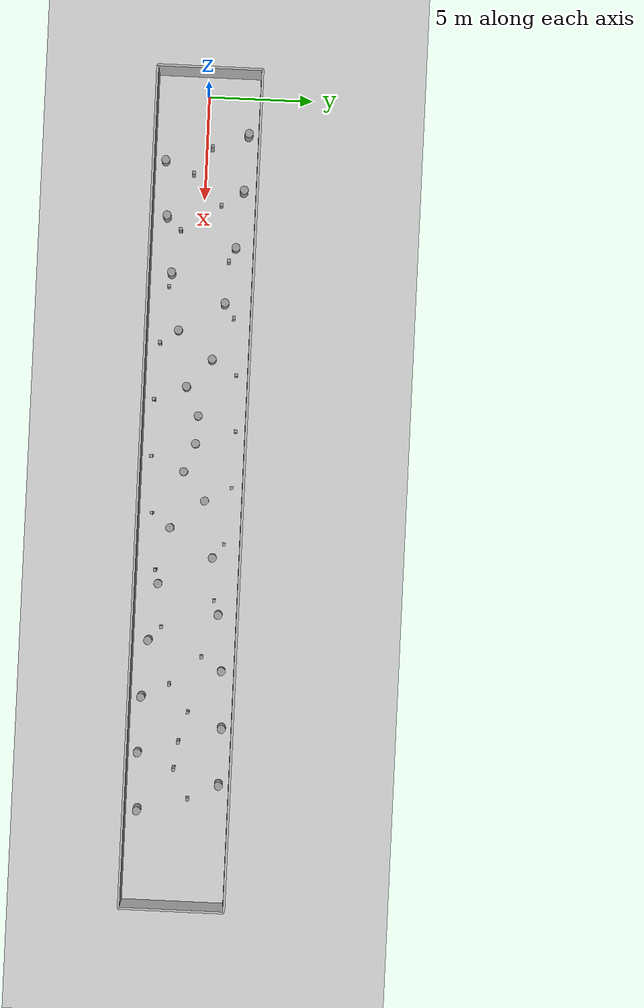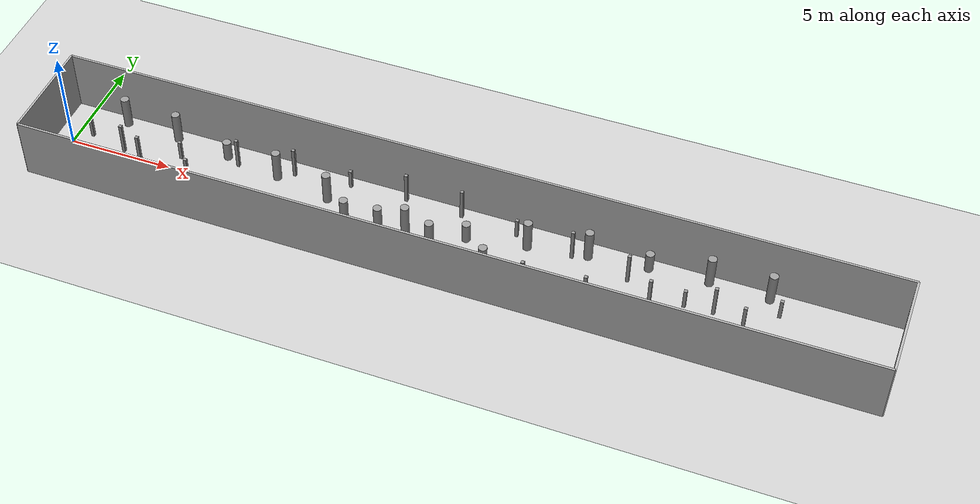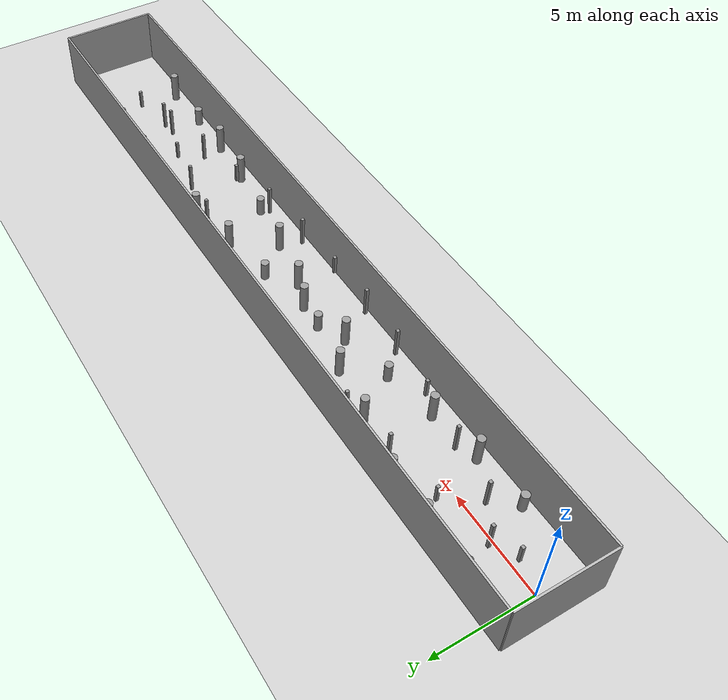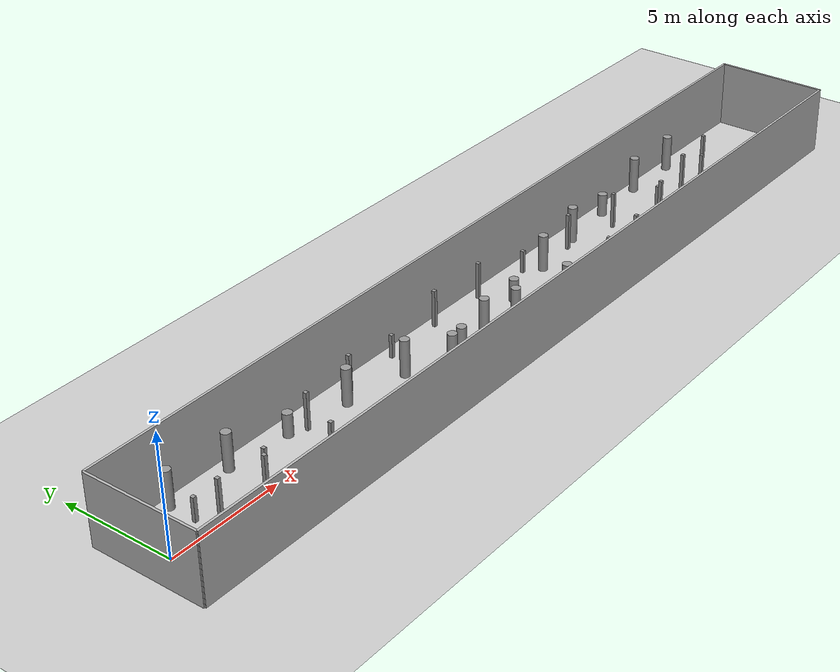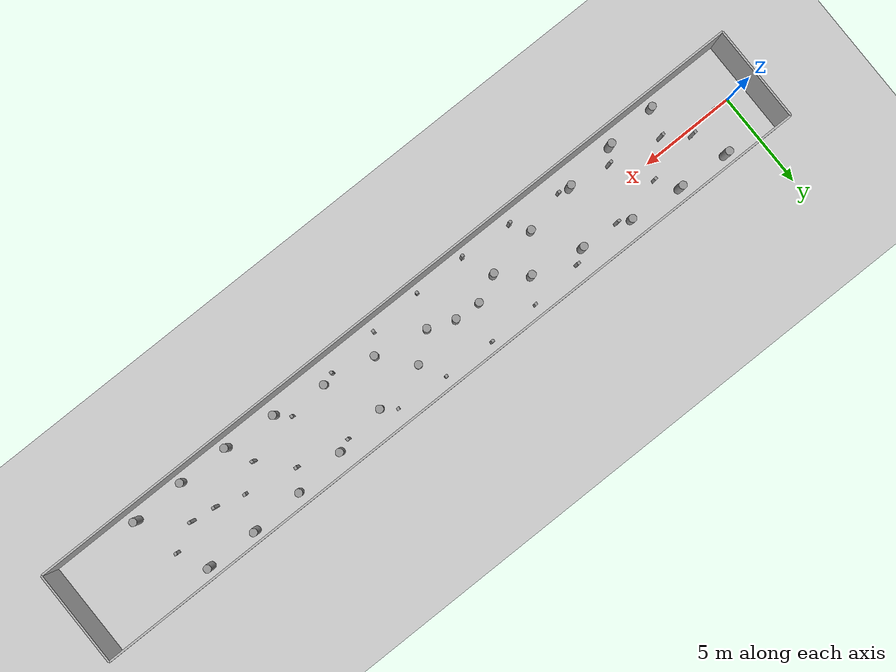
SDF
<?xml version="1.0" ?>
<sdf version="1.6">
<world name="default">
    <physics type="ode">
      <max_step_size>0.004</max_step_size>
      <real_time_factor>1.0</real_time_factor>
      <real_time_update_rate>250</real_time_update_rate>
    </physics>
    <plugin name="ros_interface" filename="libgazebo_ros_api_plugin.so"/>
    <include><uri>model://sun</uri></include>
    <include><uri>model://ground_plane</uri></include>
    <model name="room_frame"><static>true</static>
 <link name="north"><pose>19 2.5 1.5 0 0 0</pose><collision name="c"><geometry><box><size>40 0.1 3.0</size></box></geometry></collision><visual name="v"><geometry><box><size>40 0.1 3.0</size></box></geometry></visual></link>
    <link name="south"><pose>19 -2.5 1.5 0 0 0</pose><collision name="c"><geometry><box><size>40 0.1 3.0</size></box></geometry></collision><visual name="v"><geometry><box><size>40 0.1 3.0</size></box></geometry></visual></link>
    <link name="east"><pose>39 0 1.5 0 0 0</pose><collision name="c"><geometry><box><size>0.1 5 3.0</size></box></geometry></collision><visual name="v"><geometry><box><size>0.1 5 3.0</size></box></geometry></visual></link>
    <link name="west"><pose>-1 0 1.5 0 0 0</pose><collision name="c"><geometry><box><size>0.1 5 3.0</size></box></geometry></collision><visual name="v"><geometry><box><size>0.1 5 3.0</size></box></geometry></visual></link></model>
    <model name="static_0"><pose>1.20 0.00 1.30 0 0 0</pose><static>true</static>
    <link name="l"><collision name="c"><geometry><box><size>0.15 0.15 1.0</size></box></geometry></collision>
    <visual name="v"><geometry><box><size>0.15 0.15 1.0</size></box></geometry><material><script><uri>file://media/materials/scripts/gazebo.material</uri><name>Gazebo/Grey</name></script></material></visual></link></model>
    <model name="static_1"><pose>1.88 1.99 0.80 0 0 0</pose><static>true</static>
    <link name="l"><collision name="c"><geometry><cylinder><radius>0.2</radius><length>1.6</length></cylinder></geometry></collision>
    <visual name="v"><geometry><cylinder><radius>0.2</radius><length>1.6</length></cylinder></geometry><material><script><uri>file://media/materials/scripts/gazebo.material</uri><name>Gazebo/Grey</name></script></material></visual></link></model>
    <model name="static_2"><pose>2.56 0.28 0.80 0 0 0</pose><static>true</static>
    <link name="l"><collision name="c"><geometry><box><size>0.15 0.15 1.6</size></box></geometry></collision>
    <visual name="v"><geometry><box><size>0.15 0.15 1.6</size></box></geometry><material><script><uri>file://media/materials/scripts/gazebo.material</uri><name>Gazebo/Grey</name></script></material></visual></link></model>
    <model name="static_3"><pose>3.24 -1.96 0.50 0 0 0</pose><static>true</static>
    <link name="l"><collision name="c"><geometry><cylinder><radius>0.2</radius><length>1.0</length></cylinder></geometry></collision>
    <visual name="v"><geometry><cylinder><radius>0.2</radius><length>1.0</length></cylinder></geometry><material><script><uri>file://media/materials/scripts/gazebo.material</uri><name>Gazebo/Grey</name></script></material></visual></link></model>
    <model name="static_4"><pose>3.92 -0.56 1.30 0 0 0</pose><static>true</static>
    <link name="l"><collision name="c"><geometry><box><size>0.15 0.15 1.6</size></box></geometry></collision>
    <visual name="v"><geometry><box><size>0.15 0.15 1.6</size></box></geometry><material><script><uri>file://media/materials/scripts/gazebo.material</uri><name>Gazebo/Grey</name></script></material></visual></link></model>
    <model name="static_5"><pose>4.60 1.88 0.80 0 0 0</pose><static>true</static>
    <link name="l"><collision name="c"><geometry><cylinder><radius>0.2</radius><length>1.6</length></cylinder></geometry></collision>
    <visual name="v"><geometry><cylinder><radius>0.2</radius><length>1.6</length></cylinder></geometry><material><script><uri>file://media/materials/scripts/gazebo.material</uri><name>Gazebo/Grey</name></script></material></visual></link></model>
    <model name="static_6"><pose>5.28 0.82 0.50 0 0 0</pose><static>true</static>
    <link name="l"><collision name="c"><geometry><box><size>0.15 0.15 1.0</size></box></geometry></collision>
    <visual name="v"><geometry><box><size>0.15 0.15 1.0</size></box></geometry><material><script><uri>file://media/materials/scripts/gazebo.material</uri><name>Gazebo/Grey</name></script></material></visual></link></model>
    <model name="static_7"><pose>5.96 -1.76 0.80 0 0 0</pose><static>true</static>
    <link name="l"><collision name="c"><geometry><cylinder><radius>0.2</radius><length>1.6</length></cylinder></geometry></collision>
    <visual name="v"><geometry><cylinder><radius>0.2</radius><length>1.6</length></cylinder></geometry><material><script><uri>file://media/materials/scripts/gazebo.material</uri><name>Gazebo/Grey</name></script></material></visual></link></model>
    <model name="static_8"><pose>6.64 -1.07 1.30 0 0 0</pose><static>true</static>
    <link name="l"><collision name="c"><geometry><box><size>0.15 0.15 1.6</size></box></geometry></collision>
    <visual name="v"><geometry><box><size>0.15 0.15 1.6</size></box></geometry><material><script><uri>file://media/materials/scripts/gazebo.material</uri><name>Gazebo/Grey</name></script></material></visual></link></model>
    <model name="static_9"><pose>7.32 1.61 0.50 0 0 0</pose><static>true</static>
    <link name="l"><collision name="c"><geometry><cylinder><radius>0.2</radius><length>1.0</length></cylinder></geometry></collision>
    <visual name="v"><geometry><cylinder><radius>0.2</radius><length>1.0</length></cylinder></geometry><material><script><uri>file://media/materials/scripts/gazebo.material</uri><name>Gazebo/Grey</name></script></material></visual></link></model>
    <model name="static_10"><pose>8.00 1.30 0.80 0 0 0</pose><static>true</static>
    <link name="l"><collision name="c"><geometry><box><size>0.15 0.15 1.6</size></box></geometry></collision>
    <visual name="v"><geometry><box><size>0.15 0.15 1.6</size></box></geometry><material><script><uri>file://media/materials/scripts/gazebo.material</uri><name>Gazebo/Grey</name></script></material></visual></link></model>
    <model name="static_11"><pose>8.68 -1.42 0.80 0 0 0</pose><static>true</static>
    <link name="l"><collision name="c"><geometry><cylinder><radius>0.2</radius><length>1.6</length></cylinder></geometry></collision>
    <visual name="v"><geometry><cylinder><radius>0.2</radius><length>1.6</length></cylinder></geometry><material><script><uri>file://media/materials/scripts/gazebo.material</uri><name>Gazebo/Grey</name></script></material></visual></link></model>
    <model name="static_12"><pose>9.36 -1.50 1.30 0 0 0</pose><static>true</static>
    <link name="l"><collision name="c"><geometry><box><size>0.15 0.15 1.0</size></box></geometry></collision>
    <visual name="v"><geometry><box><size>0.15 0.15 1.0</size></box></geometry><material><script><uri>file://media/materials/scripts/gazebo.material</uri><name>Gazebo/Grey</name></script></material></visual></link></model>
    <model name="static_13"><pose>10.04 1.21 0.80 0 0 0</pose><static>true</static>
    <link name="l"><collision name="c"><geometry><cylinder><radius>0.2</radius><length>1.6</length></cylinder></geometry></collision>
    <visual name="v"><geometry><cylinder><radius>0.2</radius><length>1.6</length></cylinder></geometry><material><script><uri>file://media/materials/scripts/gazebo.material</uri><name>Gazebo/Grey</name></script></material></visual></link></model>
    <model name="static_14"><pose>10.72 1.67 0.80 0 0 0</pose><static>true</static>
    <link name="l"><collision name="c"><geometry><box><size>0.15 0.15 1.6</size></box></geometry></collision>
    <visual name="v"><geometry><box><size>0.15 0.15 1.6</size></box></geometry><material><script><uri>file://media/materials/scripts/gazebo.material</uri><name>Gazebo/Grey</name></script></material></visual></link></model>
    <model name="static_15"><pose>11.40 -0.97 0.50 0 0 0</pose><static>true</static>
    <link name="l"><collision name="c"><geometry><cylinder><radius>0.2</radius><length>1.0</length></cylinder></geometry></collision>
    <visual name="v"><geometry><cylinder><radius>0.2</radius><length>1.0</length></cylinder></geometry><material><script><uri>file://media/materials/scripts/gazebo.material</uri><name>Gazebo/Grey</name></script></material></visual></link></model>
    <model name="static_16"><pose>12.08 -1.81 1.30 0 0 0</pose><static>true</static>
    <link name="l"><collision name="c"><geometry><box><size>0.15 0.15 1.6</size></box></geometry></collision>
    <visual name="v"><geometry><box><size>0.15 0.15 1.6</size></box></geometry><material><script><uri>file://media/materials/scripts/gazebo.material</uri><name>Gazebo/Grey</name></script></material></visual></link></model>
    <model name="static_17"><pose>12.76 0.72 0.80 0 0 0</pose><static>true</static>
    <link name="l"><collision name="c"><geometry><cylinder><radius>0.2</radius><length>1.6</length></cylinder></geometry></collision>
    <visual name="v"><geometry><cylinder><radius>0.2</radius><length>1.6</length></cylinder></geometry><material><script><uri>file://media/materials/scripts/gazebo.material</uri><name>Gazebo/Grey</name></script></material></visual></link></model>
    <model name="static_18"><pose>13.44 1.91 0.50 0 0 0</pose><static>true</static>
    <link name="l"><collision name="c"><geometry><box><size>0.15 0.15 1.0</size></box></geometry></collision>
    <visual name="v"><geometry><box><size>0.15 0.15 1.0</size></box></geometry><material><script><uri>file://media/materials/scripts/gazebo.material</uri><name>Gazebo/Grey</name></script></material></visual></link></model>
    <model name="static_19"><pose>14.12 -0.45 0.80 0 0 0</pose><static>true</static>
    <link name="l"><collision name="c"><geometry><cylinder><radius>0.2</radius><length>1.6</length></cylinder></geometry></collision>
    <visual name="v"><geometry><cylinder><radius>0.2</radius><length>1.6</length></cylinder></geometry><material><script><uri>file://media/materials/scripts/gazebo.material</uri><name>Gazebo/Grey</name></script></material></visual></link></model>
    <model name="static_20"><pose>14.80 -1.98 1.30 0 0 0</pose><static>true</static>
    <link name="l"><collision name="c"><geometry><box><size>0.15 0.15 1.6</size></box></geometry></collision>
    <visual name="v"><geometry><box><size>0.15 0.15 1.6</size></box></geometry><material><script><uri>file://media/materials/scripts/gazebo.material</uri><name>Gazebo/Grey</name></script></material></visual></link></model>
    <model name="static_21"><pose>15.48 0.17 0.50 0 0 0</pose><static>true</static>
    <link name="l"><collision name="c"><geometry><cylinder><radius>0.2</radius><length>1.0</length></cylinder></geometry></collision>
    <visual name="v"><geometry><cylinder><radius>0.2</radius><length>1.0</length></cylinder></geometry><material><script><uri>file://media/materials/scripts/gazebo.material</uri><name>Gazebo/Grey</name></script></material></visual></link></model>
    <model name="static_22"><pose>16.16 2.00 0.80 0 0 0</pose><static>true</static>
    <link name="l"><collision name="c"><geometry><box><size>0.15 0.15 1.6</size></box></geometry></collision>
    <visual name="v"><geometry><box><size>0.15 0.15 1.6</size></box></geometry><material><script><uri>file://media/materials/scripts/gazebo.material</uri><name>Gazebo/Grey</name></script></material></visual></link></model>
    <model name="static_23"><pose>16.84 0.11 0.80 0 0 0</pose><static>true</static>
    <link name="l"><collision name="c"><geometry><cylinder><radius>0.2</radius><length>1.6</length></cylinder></geometry></collision>
    <visual name="v"><geometry><cylinder><radius>0.2</radius><length>1.6</length></cylinder></geometry><material><script><uri>file://media/materials/scripts/gazebo.material</uri><name>Gazebo/Grey</name></script></material></visual></link></model>
    <model name="static_24"><pose>17.52 -1.98 1.30 0 0 0</pose><static>true</static>
    <link name="l"><collision name="c"><geometry><box><size>0.15 0.15 1.0</size></box></geometry></collision>
    <visual name="v"><geometry><box><size>0.15 0.15 1.0</size></box></geometry><material><script><uri>file://media/materials/scripts/gazebo.material</uri><name>Gazebo/Grey</name></script></material></visual></link></model>
    <model name="static_25"><pose>18.20 -0.40 0.80 0 0 0</pose><static>true</static>
    <link name="l"><collision name="c"><geometry><cylinder><radius>0.2</radius><length>1.6</length></cylinder></geometry></collision>
    <visual name="v"><geometry><cylinder><radius>0.2</radius><length>1.6</length></cylinder></geometry><material><script><uri>file://media/materials/scripts/gazebo.material</uri><name>Gazebo/Grey</name></script></material></visual></link></model>
    <model name="static_26"><pose>18.88 1.93 0.80 0 0 0</pose><static>true</static>
    <link name="l"><collision name="c"><geometry><box><size>0.15 0.15 1.6</size></box></geometry></collision>
    <visual name="v"><geometry><box><size>0.15 0.15 1.6</size></box></geometry><material><script><uri>file://media/materials/scripts/gazebo.material</uri><name>Gazebo/Grey</name></script></material></visual></link></model>
    <model name="static_27"><pose>19.56 0.67 0.50 0 0 0</pose><static>true</static>
    <link name="l"><collision name="c"><geometry><cylinder><radius>0.2</radius><length>1.0</length></cylinder></geometry></collision>
    <visual name="v"><geometry><cylinder><radius>0.2</radius><length>1.0</length></cylinder></geometry><material><script><uri>file://media/materials/scripts/gazebo.material</uri><name>Gazebo/Grey</name></script></material></visual></link></model>
    <model name="static_28"><pose>20.24 -1.83 1.30 0 0 0</pose><static>true</static>
    <link name="l"><collision name="c"><geometry><box><size>0.15 0.15 1.6</size></box></geometry></collision>
    <visual name="v"><geometry><box><size>0.15 0.15 1.6</size></box></geometry><material><script><uri>file://media/materials/scripts/gazebo.material</uri><name>Gazebo/Grey</name></script></material></visual></link></model>
    <model name="static_29"><pose>20.92 -0.93 0.80 0 0 0</pose><static>true</static>
    <link name="l"><collision name="c"><geometry><cylinder><radius>0.2</radius><length>1.6</length></cylinder></geometry></collision>
    <visual name="v"><geometry><cylinder><radius>0.2</radius><length>1.6</length></cylinder></geometry><material><script><uri>file://media/materials/scripts/gazebo.material</uri><name>Gazebo/Grey</name></script></material></visual></link></model>
    <model name="static_30"><pose>21.60 1.70 0.50 0 0 0</pose><static>true</static>
    <link name="l"><collision name="c"><geometry><box><size>0.15 0.15 1.0</size></box></geometry></collision>
    <visual name="v"><geometry><box><size>0.15 0.15 1.0</size></box></geometry><material><script><uri>file://media/materials/scripts/gazebo.material</uri><name>Gazebo/Grey</name></script></material></visual></link></model>
    <model name="static_31"><pose>22.28 1.17 0.80 0 0 0</pose><static>true</static>
    <link name="l"><collision name="c"><geometry><cylinder><radius>0.2</radius><length>1.6</length></cylinder></geometry></collision>
    <visual name="v"><geometry><cylinder><radius>0.2</radius><length>1.6</length></cylinder></geometry><material><script><uri>file://media/materials/scripts/gazebo.material</uri><name>Gazebo/Grey</name></script></material></visual></link></model>
    <model name="static_32"><pose>22.96 -1.54 1.30 0 0 0</pose><static>true</static>
    <link name="l"><collision name="c"><geometry><box><size>0.15 0.15 1.6</size></box></geometry></collision>
    <visual name="v"><geometry><box><size>0.15 0.15 1.6</size></box></geometry><material><script><uri>file://media/materials/scripts/gazebo.material</uri><name>Gazebo/Grey</name></script></material></visual></link></model>
    <model name="static_33"><pose>23.64 -1.39 0.50 0 0 0</pose><static>true</static>
    <link name="l"><collision name="c"><geometry><cylinder><radius>0.2</radius><length>1.0</length></cylinder></geometry></collision>
    <visual name="v"><geometry><cylinder><radius>0.2</radius><length>1.0</length></cylinder></geometry><material><script><uri>file://media/materials/scripts/gazebo.material</uri><name>Gazebo/Grey</name></script></material></visual></link></model>
    <model name="static_34"><pose>24.32 1.34 0.80 0 0 0</pose><static>true</static>
    <link name="l"><collision name="c"><geometry><box><size>0.15 0.15 1.6</size></box></geometry></collision>
    <visual name="v"><geometry><box><size>0.15 0.15 1.6</size></box></geometry><material><script><uri>file://media/materials/scripts/gazebo.material</uri><name>Gazebo/Grey</name></script></material></visual></link></model>
    <model name="static_35"><pose>25.00 1.58 0.80 0 0 0</pose><static>true</static>
    <link name="l"><collision name="c"><geometry><cylinder><radius>0.2</radius><length>1.6</length></cylinder></geometry></collision>
    <visual name="v"><geometry><cylinder><radius>0.2</radius><length>1.6</length></cylinder></geometry><material><script><uri>file://media/materials/scripts/gazebo.material</uri><name>Gazebo/Grey</name></script></material></visual></link></model>
    <model name="static_36"><pose>25.68 -1.12 1.30 0 0 0</pose><static>true</static>
    <link name="l"><collision name="c"><geometry><box><size>0.15 0.15 1.0</size></box></geometry></collision>
    <visual name="v"><geometry><box><size>0.15 0.15 1.0</size></box></geometry><material><script><uri>file://media/materials/scripts/gazebo.material</uri><name>Gazebo/Grey</name></script></material></visual></link></model>
    <model name="static_37"><pose>26.36 -1.73 0.80 0 0 0</pose><static>true</static>
    <link name="l"><collision name="c"><geometry><cylinder><radius>0.2</radius><length>1.6</length></cylinder></geometry></collision>
    <visual name="v"><geometry><cylinder><radius>0.2</radius><length>1.6</length></cylinder></geometry><material><script><uri>file://media/materials/scripts/gazebo.material</uri><name>Gazebo/Grey</name></script></material></visual></link></model>
    <model name="static_38"><pose>27.04 0.87 0.80 0 0 0</pose><static>true</static>
    <link name="l"><collision name="c"><geometry><box><size>0.15 0.15 1.6</size></box></geometry></collision>
    <visual name="v"><geometry><box><size>0.15 0.15 1.6</size></box></geometry><material><script><uri>file://media/materials/scripts/gazebo.material</uri><name>Gazebo/Grey</name></script></material></visual></link></model>
    <model name="static_39"><pose>27.72 1.86 0.50 0 0 0</pose><static>true</static>
    <link name="l"><collision name="c"><geometry><cylinder><radius>0.2</radius><length>1.0</length></cylinder></geometry></collision>
    <visual name="v"><geometry><cylinder><radius>0.2</radius><length>1.0</length></cylinder></geometry><material><script><uri>file://media/materials/scripts/gazebo.material</uri><name>Gazebo/Grey</name></script></material></visual></link></model>
    <model name="static_40"><pose>28.40 -0.61 1.30 0 0 0</pose><static>true</static>
    <link name="l"><collision name="c"><geometry><box><size>0.15 0.15 1.6</size></box></geometry></collision>
    <visual name="v"><geometry><box><size>0.15 0.15 1.6</size></box></geometry><material><script><uri>file://media/materials/scripts/gazebo.material</uri><name>Gazebo/Grey</name></script></material></visual></link></model>
    <model name="static_41"><pose>29.08 -1.94 0.80 0 0 0</pose><static>true</static>
    <link name="l"><collision name="c"><geometry><cylinder><radius>0.2</radius><length>1.6</length></cylinder></geometry></collision>
    <visual name="v"><geometry><cylinder><radius>0.2</radius><length>1.6</length></cylinder></geometry><material><script><uri>file://media/materials/scripts/gazebo.material</uri><name>Gazebo/Grey</name></script></material></visual></link></model>
    <model name="static_42"><pose>29.76 0.33 0.50 0 0 0</pose><static>true</static>
    <link name="l"><collision name="c"><geometry><box><size>0.15 0.15 1.0</size></box></geometry></collision>
    <visual name="v"><geometry><box><size>0.15 0.15 1.0</size></box></geometry><material><script><uri>file://media/materials/scripts/gazebo.material</uri><name>Gazebo/Grey</name></script></material></visual></link></model>
    <model name="static_43"><pose>30.44 1.99 0.80 0 0 0</pose><static>true</static>
    <link name="l"><collision name="c"><geometry><cylinder><radius>0.2</radius><length>1.6</length></cylinder></geometry></collision>
    <visual name="v"><geometry><cylinder><radius>0.2</radius><length>1.6</length></cylinder></geometry><material><script><uri>file://media/materials/scripts/gazebo.material</uri><name>Gazebo/Grey</name></script></material></visual></link></model>
    <model name="static_44"><pose>31.12 -0.05 1.30 0 0 0</pose><static>true</static>
    <link name="l"><collision name="c"><geometry><box><size>0.15 0.15 1.6</size></box></geometry></collision>
    <visual name="v"><geometry><box><size>0.15 0.15 1.6</size></box></geometry><material><script><uri>file://media/materials/scripts/gazebo.material</uri><name>Gazebo/Grey</name></script></material></visual></link></model>
    <model name="static_45"><pose>31.80 -2.00 0.50 0 0 0</pose><static>true</static>
    <link name="l"><collision name="c"><geometry><cylinder><radius>0.2</radius><length>1.0</length></cylinder></geometry></collision>
    <visual name="v"><geometry><cylinder><radius>0.2</radius><length>1.0</length></cylinder></geometry><material><script><uri>file://media/materials/scripts/gazebo.material</uri><name>Gazebo/Grey</name></script></material></visual></link></model>
    <model name="static_46"><pose>32.48 -0.23 0.80 0 0 0</pose><static>true</static>
    <link name="l"><collision name="c"><geometry><box><size>0.15 0.15 1.6</size></box></geometry></collision>
    <visual name="v"><geometry><box><size>0.15 0.15 1.6</size></box></geometry><material><script><uri>file://media/materials/scripts/gazebo.material</uri><name>Gazebo/Grey</name></script></material></visual></link></model>
    <model name="static_47"><pose>33.16 1.97 0.80 0 0 0</pose><static>true</static>
    <link name="l"><collision name="c"><geometry><cylinder><radius>0.2</radius><length>1.6</length></cylinder></geometry></collision>
    <visual name="v"><geometry><cylinder><radius>0.2</radius><length>1.6</length></cylinder></geometry><material><script><uri>file://media/materials/scripts/gazebo.material</uri><name>Gazebo/Grey</name></script></material></visual></link></model>
    <model name="static_48"><pose>33.84 0.51 1.30 0 0 0</pose><static>true</static>
    <link name="l"><collision name="c"><geometry><box><size>0.15 0.15 1.0</size></box></geometry></collision>
    <visual name="v"><geometry><box><size>0.15 0.15 1.0</size></box></geometry><material><script><uri>file://media/materials/scripts/gazebo.material</uri><name>Gazebo/Grey</name></script></material></visual></link></model>
    <model name="static_49"><pose>34.52 -1.89 0.80 0 0 0</pose><static>true</static>
    <link name="l"><collision name="c"><geometry><cylinder><radius>0.2</radius><length>1.6</length></cylinder></geometry></collision>
    <visual name="v"><geometry><cylinder><radius>0.2</radius><length>1.6</length></cylinder></geometry><material><script><uri>file://media/materials/scripts/gazebo.material</uri><name>Gazebo/Grey</name></script></material></visual></link></model></world></sdf>
